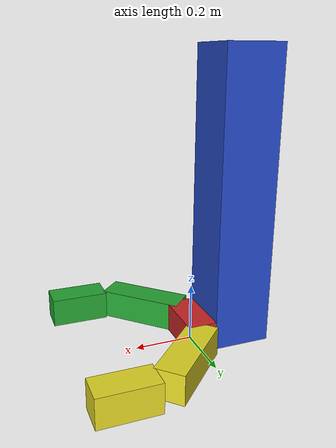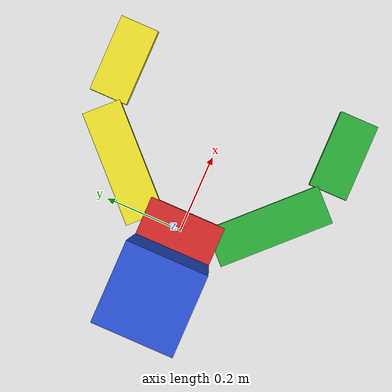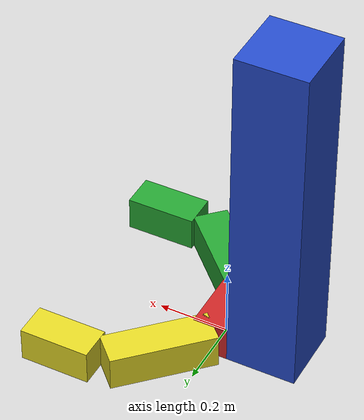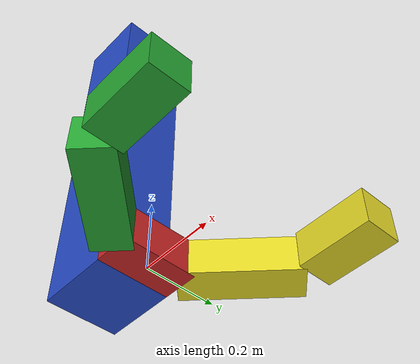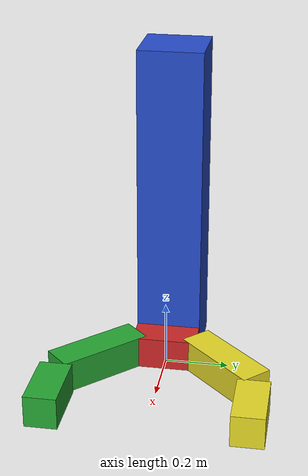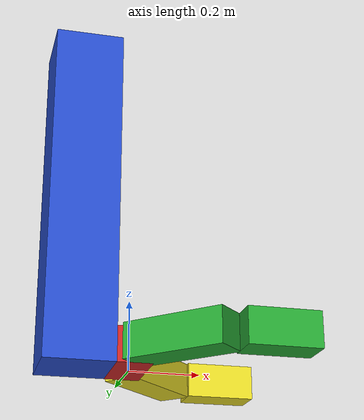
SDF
<?xml version="1.0"?>

<sdf version="1.4">
    <model name="gripper">
        <static>false</static>
        <pose>0 0 0 0 0 0</pose> <!-- dimensions are measured from the center of the model-->

        <link name="guide_rail">
            <pose>-0.15 0.0 0.5 0 0 0</pose>
            <inertial>
                <pose>0 0 0 0 0 0</pose><!-- at the center of the block-->
                <inertia>
                    <!-- values for mass = 10 -->
                    <ixx>0.3333</ixx>
                    <ixy>0</ixy>
                    <ixz>0</ixz>
                    <iyy>0.3333</iyy>
                    <iyz>0</iyz>
                    <izz>0.0667</izz>
                </inertia>
                <mass>10.0</mass>
            </inertial>
            <collision name="guide_rail_collision">
                <geometry>
                    <box>
                        <size>0.2 0.2 1.0</size>
                    </box>
                </geometry>
            </collision>
            <visual name="guide_rail_visual">
                <geometry>
                    <box>
                        <size>0.2 0.2 1.0</size>
                    </box>
                </geometry>
                <material>
                    <script>
                        <uri>file://media/materials/scripts/gazebo.material</uri>
                        <name>Gazebo/Blue</name>
                    </script>
                </material>
            </visual>
        </link>
        <link name="palm">
            <pose>0.0 0.0 0.05 0 0 0</pose>
            <inertial>
                <inertia>
                    <!-- assign some small values for the physics engine to evaluate, change them later on -->
                    <ixx>0.01</ixx>
                    <ixy>0</ixy>
                    <ixz>0</ixz>
                    <iyy>0.01</iyy>
                    <iyz>0</iyz>
                    <izz>0.01</izz>
                </inertia>
                <mass>0.5</mass>
            </inertial>
            <collision name="palm_collision">
                <geometry>
                    <box>
                        <size>0.1 0.2 0.1</size>
                    </box>
                </geometry>
            </collision>
            <visual name="palm_visual">
                <geometry>
                    <box>
                        <size>0.1 0.2 0.1</size>
                    </box>
                </geometry>
                <material>
                    <script>
                        <uri>file://media/materials/scripts/gazebo.material</uri>
                        <name>Gazebo/Red</name>
                    </script>
                </material>
            </visual>
        </link>
        <link name="left_finger">
            <pose>0.1 0.2 0.05 0 0 -0.78539</pose>
            <inertial>
                <inertia>
                    <ixx>0.01</ixx>
                    <ixy>0</ixy>
                    <ixz>0</ixz>
                    <iyy>0.01</iyy>
                    <iyz>0</iyz>
                    <izz>0.01</izz>
                </inertia>
                <mass>0.1</mass>
            </inertial>
            <collision name="left_finger_collision">
                <geometry>
                    <box>
                        <size>0.1 0.3 0.1</size>
                    </box>
                </geometry>
            </collision>
            <visual name="left_finger_visual">
                <geometry>
                    <box>
                        <size>0.1 0.3 0.1</size>
                    </box>
                </geometry>
                <material>
                    <script>
                        <uri>file://media/materials/scripts/gazebo.material</uri>
                        <name>Gazebo/Yellow</name>
                    </script>
                </material>
            </visual>
        </link>
        <link name="left_finger_tip">
            <pose>0.336 0.3 0.05 0 0 1.5707</pose>
            <inertial>
                <inertia>
                    <ixx>0.01</ixx>
                    <ixy>0</ixy>
                    <ixz>0</ixz>
                    <iyy>0.01</iyy>
                    <iyz>0</iyz>
                    <izz>0.01</izz>
                </inertia>
                <mass>0.1</mass>
            </inertial>
            <collision name="left_finger_tip_collision">
                <geometry>
                    <box>
                        <size>0.1 0.2 0.1</size>
                    </box>
                </geometry>
            </collision>
            <visual name="left_finger_tip_visual">
                <geometry>
                    <box>
                        <size>0.1 0.2 0.1</size>
                    </box>gedit ~/.gazebo/models/my_gripper/simple_gripper.sdf
                </geometry>
                <material>
                    <script>
                        <uri>file://media/materials/scripts/gazebo.material</uri>
                        <name>Gazebo/Yellow</name>
                    </script>
                </material>
            </visual>
        </link>
        <link name="right_finger">
            <pose>0.1 -0.2 0.05 0 0 .78539</pose>
            <inertial>
                <inertia>
                    <ixx>0.01</ixx>
                    <ixy>0</ixy>
                    <ixz>0</ixz>
                    <iyy>0.01</iyy>
                    <iyz>0</iyz>
                    <izz>0.01</izz>
                </inertia>
                <mass>0.1</mass>
            </inertial>
            <collision name="right_finger_collision">
                <geometry>
                    <box>
                        <size>0.1 0.3 0.1</size>
                    </box>
                </geometry>
            </collision>
            <visual name="right_finger_visual">
                <geometry>
                    <box>
                        <size>0.1 0.3 0.1</size>
                    </box>
                </geometry>
                <material>
                    <script>
                        <uri>file://media/materials/scripts/gazebo.material</uri>
                        <name>Gazebo/Green</name>
                    </script>
                </material>
            </visual>
        </link>
        <link name="right_finger_tip">
            <pose>0.336 -0.3 0.05 0 0 1.5707</pose>
            <inertial>
                <inertia>
                    <ixx>0.01</ixx>
                    <ixy>0</ixy>
                    <ixz>0</ixz>
                    <iyy>0.01</iyy>
                    <iyz>0</iyz>
                    <izz>0.01</izz>
                </inertia>
                <mass>0.1</mass>
            </inertial>
            <collision name="tight_finger_tip_collision">
                <geometry>
                    <box>
                        <size>0.1 0.2 0.1</size>
                    </box>
                </geometry>
            </collision>
            <visual name="right_finger_tip_visual">
                <geometry>
                    <box>
                        <size>0.1 0.2 0.1</size>
                    </box>
                </geometry>
                <material>
                    <script>
                        <uri>file://media/materials/scripts/gazebo.material</uri>
                        <name>Gazebo/Green</name>
                    </script>
                </material>
            </visual>
        </link>

        <joint name="palm_left_finger" type="revolute">
            <pose>0 -0.15 0 0 0 0</pose>
            <child>left_finger</child>
            <parent>palm</parent>
            <axis>
                <limit>
                    <lower>-0.4</lower>
                    <upper>0.4</upper>
                </limit>
                <xyz>0 0 1</xyz>
            </axis>
        </joint>
        <joint name="left_finger_tip" type="revolute">
            <pose>0 0.1 0 0 0 0</pose>
            <child>left_finger_tip</child>
            <parent>left_finger</parent>
            <axis>
                <limit>
                    <lower>-0.4</lower>
                    <upper>0.4</upper>
                </limit>
                <xyz>0 0 1</xyz>
            </axis>
        </joint>
        <joint name="palm_right_finger" type="revolute">
            <pose>0 0.15 0 0 0 0</pose>
            <child>right_finger</child>
            <parent>palm</parent>
            <axis>
                <limit>
                    <lower>-0.4</lower>
                    <upper>0.4</upper>
                </limit>
                <xyz>0 0 1</xyz>
            </axis>
        </joint>
        <joint name="right_finger_tip" type="revolute">
            <pose>0 0.1 0 0 0 0</pose>
            <child>right_finger_tip</child>
            <parent>right_finger</parent>
            <axis>
                <limit>
                    <lower>-0.4</lower>
                    <upper>0.4</upper>
                </limit>
                <xyz>0 0 1</xyz>
            </axis>
        </joint>
        <joint name="palm_riser" type="prismatic">
            <child>palm</child>
            <parent>guide_rail</parent>
            <axis>
                <limit>
                    <lower>0</lower>
                    <upper>0.9</upper>
                </limit>
                <xyz>0 0 1</xyz>
            </axis>
        </joint>

    </model>
</sdf>
